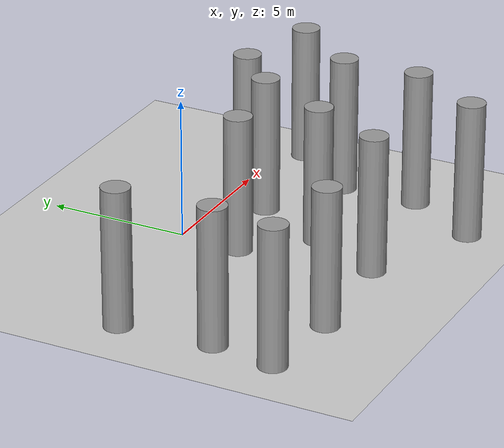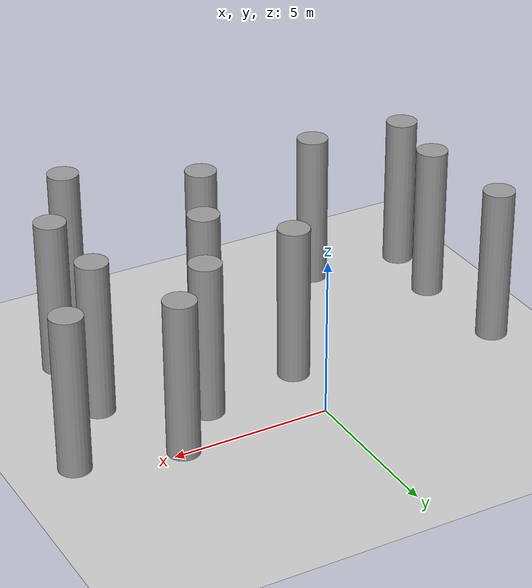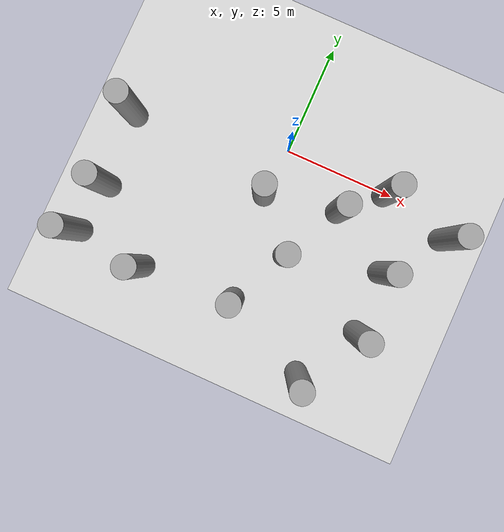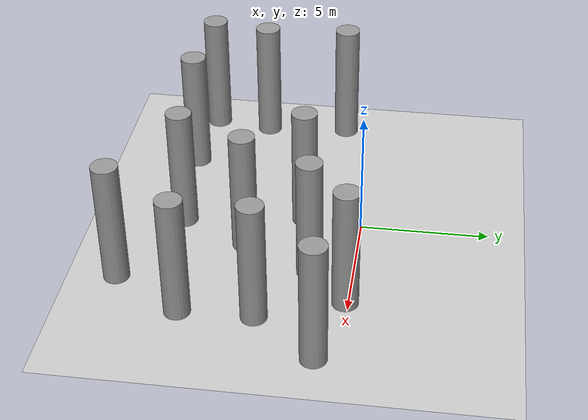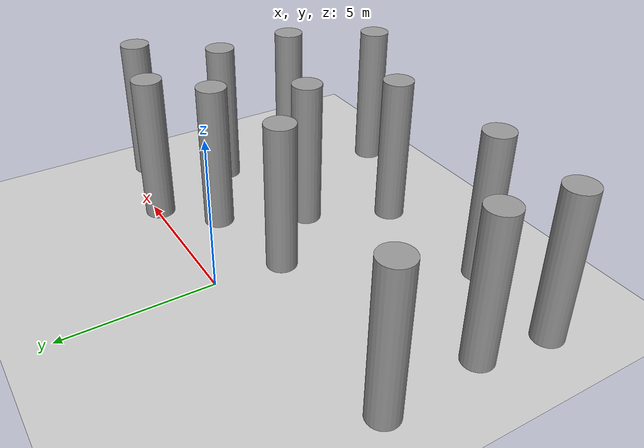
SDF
<sdf version="1.7">
 <world name="default">
  <model name="ground_plane">
   <static>1</static>
   <link name="link">
    <collision name="collision">
     <geometry><plane><normal>0 0 1</normal><size>100 100</size></plane></geometry>
     <surface><friction><ode><mu>100</mu><mu2>50</mu2></ode></friction></surface>
    </collision>
    <visual name="visual">
     <cast_shadows>0</cast_shadows>
     <geometry><plane><normal>0 0 1</normal><size>100 100</size></plane></geometry>
     <material>
      <script><uri>file://media/materials/scripts/gazebo.material</uri><name>Gazebo/Grey</name></script>
     </material>
    </visual>
   </link>
  </model>
  <model name="cylinder5_clone">
   <link name="link">
    <inertial>
     <mass>1</mass>
     <inertia><ixx>0.145833</ixx><ixy>0</ixy><ixz>0</ixz><iyy>0.145833</iyy><iyz>0</iyz><izz>0.125</izz></inertia>
    </inertial>
    <kinematic>1</kinematic>
    <visual name="visual">
     <geometry><cylinder><radius>0.5</radius><length>5</length></cylinder></geometry>
     <material>
      <script><name>Gazebo/Grey</name><uri>file://media/materials/scripts/gazebo.material</uri></script>
      <shader type="pixel"><normal_map>__default__</normal_map></shader>
      <ambient>0.3 0.3 0.3 1</ambient>
      <diffuse>0.7 0.7 0.7 1</diffuse>
      <specular>0.01 0.01 0.01 1</specular>
      <emissive>0 0 0 1</emissive>
     </material>
    </visual>
    <collision name="collision">
     <geometry><cylinder><radius>0.5</radius><length>5</length></cylinder></geometry>
     <surface>
      <friction>
       <ode><mu>1</mu><mu2>1</mu2><fdir1>0 0 0</fdir1><slip1>0</slip1><slip2>0</slip2></ode>
       <torsional>
        <coefficient>1</coefficient>
        <patch_radius>0</patch_radius>
        <surface_radius>0</surface_radius>
        <use_patch_radius>1</use_patch_radius>
        <ode><slip>0</slip></ode>
       </torsional>
      </friction>
      <bounce><restitution_coefficient>0</restitution_coefficient><threshold>1e+06</threshold></bounce>
      <contact>
       <collide_without_contact>0</collide_without_contact>
       <collide_without_contact_bitmask>1</collide_without_contact_bitmask>
       <collide_bitmask>1</collide_bitmask>
       <ode>
        <soft_cfm>0</soft_cfm>
        <soft_erp>0.2</soft_erp>
        <kp>1e+13</kp>
        <kd>1</kd>
        <max_vel>0.01</max_vel>
        <min_depth>0</min_depth>
       </ode>
       <bullet>
        <split_impulse>1</split_impulse>
        <split_impulse_penetration_threshold>-0.01</split_impulse_penetration_threshold>
        <soft_cfm>0</soft_cfm>
        <soft_erp>0.2</soft_erp>
        <kp>1e+13</kp>
        <kd>1</kd>
       </bullet>
      </contact>
     </surface>
    </collision>
   </link>
   <static>0</static>
   <pose>1.72804 -4.33355 2.52877 0.001005 0.001206 -0.001</pose>
  </model>
  <model name="cylinder5_clone_0">
   <link name="link">
    <inertial>
     <mass>1</mass>
     <inertia><ixx>0.145833</ixx><ixy>0</ixy><ixz>0</ixz><iyy>0.145833</iyy><iyz>0</iyz><izz>0.125</izz></inertia>
    </inertial>
    <kinematic>1</kinematic>
    <visual name="visual">
     <geometry><cylinder><radius>0.5</radius><length>5</length></cylinder></geometry>
     <material>
      <script><name>Gazebo/Grey</name><uri>file://media/materials/scripts/gazebo.material</uri></script>
      <shader type="pixel"><normal_map>__default__</normal_map></shader>
      <ambient>0.3 0.3 0.3 1</ambient>
      <diffuse>0.7 0.7 0.7 1</diffuse>
      <specular>0.01 0.01 0.01 1</specular>
      <emissive>0 0 0 1</emissive>
     </material>
    </visual>
    <collision name="collision">
     <geometry><cylinder><radius>0.5</radius><length>5</length></cylinder></geometry>
     <surface>
      <friction>
       <ode><mu>1</mu><mu2>1</mu2><fdir1>0 0 0</fdir1><slip1>0</slip1><slip2>0</slip2></ode>
       <torsional>
        <coefficient>1</coefficient>
        <patch_radius>0</patch_radius>
        <surface_radius>0</surface_radius>
        <use_patch_radius>1</use_patch_radius>
        <ode><slip>0</slip></ode>
       </torsional>
      </friction>
      <bounce><restitution_coefficient>0</restitution_coefficient><threshold>1e+06</threshold></bounce>
      <contact>
       <collide_without_contact>0</collide_without_contact>
       <collide_without_contact_bitmask>1</collide_without_contact_bitmask>
       <collide_bitmask>1</collide_bitmask>
       <ode>
        <soft_cfm>0</soft_cfm>
        <soft_erp>0.2</soft_erp>
        <kp>1e+13</kp>
        <kd>1</kd>
        <max_vel>0.01</max_vel>
        <min_depth>0</min_depth>
       </ode>
       <bullet>
        <split_impulse>1</split_impulse>
        <split_impulse_penetration_threshold>-0.01</split_impulse_penetration_threshold>
        <soft_cfm>0</soft_cfm>
        <soft_erp>0.2</soft_erp>
        <kp>1e+13</kp>
        <kd>1</kd>
       </bullet>
      </contact>
     </surface>
    </collision>
   </link>
   <static>0</static>
   <pose>4.65305 -0.11819 2.52877 0.001005 0.001206 -0.001</pose>
  </model>
  <model name="cylinder5_clone_2">
   <link name="link">
    <inertial>
     <mass>1</mass>
     <inertia><ixx>0.145833</ixx><ixy>0</ixy><ixz>0</ixz><iyy>0.145833</iyy><iyz>0</iyz><izz>0.125</izz></inertia>
    </inertial>
    <kinematic>1</kinematic>
    <visual name="visual">
     <geometry><cylinder><radius>0.5</radius><length>5</length></cylinder></geometry>
     <material>
      <script><name>Gazebo/Grey</name><uri>file://media/materials/scripts/gazebo.material</uri></script>
      <shader type="pixel"><normal_map>__default__</normal_map></shader>
      <ambient>0.3 0.3 0.3 1</ambient>
      <diffuse>0.7 0.7 0.7 1</diffuse>
      <specular>0.01 0.01 0.01 1</specular>
      <emissive>0 0 0 1</emissive>
     </material>
    </visual>
    <collision name="collision">
     <geometry><cylinder><radius>0.5</radius><length>5</length></cylinder></geometry>
     <surface>
      <friction>
       <ode><mu>1</mu><mu2>1</mu2><fdir1>0 0 0</fdir1><slip1>0</slip1><slip2>0</slip2></ode>
       <torsional>
        <coefficient>1</coefficient>
        <patch_radius>0</patch_radius>
        <surface_radius>0</surface_radius>
        <use_patch_radius>1</use_patch_radius>
        <ode><slip>0</slip></ode>
       </torsional>
      </friction>
      <bounce><restitution_coefficient>0</restitution_coefficient><threshold>1e+06</threshold></bounce>
      <contact>
       <collide_without_contact>0</collide_without_contact>
       <collide_without_contact_bitmask>1</collide_without_contact_bitmask>
       <collide_bitmask>1</collide_bitmask>
       <ode>
        <soft_cfm>0</soft_cfm>
        <soft_erp>0.2</soft_erp>
        <kp>1e+13</kp>
        <kd>1</kd>
        <max_vel>0.01</max_vel>
        <min_depth>0</min_depth>
       </ode>
       <bullet>
        <split_impulse>1</split_impulse>
        <split_impulse_penetration_threshold>-0.01</split_impulse_penetration_threshold>
        <soft_cfm>0</soft_cfm>
        <soft_erp>0.2</soft_erp>
        <kp>1e+13</kp>
        <kd>1</kd>
       </bullet>
      </contact>
     </surface>
    </collision>
   </link>
   <static>0</static>
   <pose>-6.89485 -6.99418 2.52877 0.001005 0.001206 -0.001</pose>
  </model>
  <model name="cylinder5_clone_3">
   <link name="link">
    <inertial>
     <mass>1</mass>
     <inertia><ixx>0.145833</ixx><ixy>0</ixy><ixz>0</ixz><iyy>0.145833</iyy><iyz>0</iyz><izz>0.125</izz></inertia>
    </inertial>
    <kinematic>1</kinematic>
    <visual name="visual">
     <geometry><cylinder><radius>0.5</radius><length>5</length></cylinder></geometry>
     <material>
      <script><name>Gazebo/Grey</name><uri>file://media/materials/scripts/gazebo.material</uri></script>
      <shader type="pixel"><normal_map>__default__</normal_map></shader>
      <ambient>0.3 0.3 0.3 1</ambient>
      <diffuse>0.7 0.7 0.7 1</diffuse>
      <specular>0.01 0.01 0.01 1</specular>
      <emissive>0 0 0 1</emissive>
     </material>
    </visual>
    <collision name="collision">
     <geometry><cylinder><radius>0.5</radius><length>5</length></cylinder></geometry>
     <surface>
      <friction>
       <ode><mu>1</mu><mu2>1</mu2><fdir1>0 0 0</fdir1><slip1>0</slip1><slip2>0</slip2></ode>
       <torsional>
        <coefficient>1</coefficient>
        <patch_radius>0</patch_radius>
        <surface_radius>0</surface_radius>
        <use_patch_radius>1</use_patch_radius>
        <ode><slip>0</slip></ode>
       </torsional>
      </friction>
      <bounce><restitution_coefficient>0</restitution_coefficient><threshold>1e+06</threshold></bounce>
      <contact>
       <collide_without_contact>0</collide_without_contact>
       <collide_without_contact_bitmask>1</collide_without_contact_bitmask>
       <collide_bitmask>1</collide_bitmask>
       <ode>
        <soft_cfm>0</soft_cfm>
        <soft_erp>0.2</soft_erp>
        <kp>1e+13</kp>
        <kd>1</kd>
        <max_vel>0.01</max_vel>
        <min_depth>0</min_depth>
       </ode>
       <bullet>
        <split_impulse>1</split_impulse>
        <split_impulse_penetration_threshold>-0.01</split_impulse_penetration_threshold>
        <soft_cfm>0</soft_cfm>
        <soft_erp>0.2</soft_erp>
        <kp>1e+13</kp>
        <kd>1</kd>
       </bullet>
      </contact>
     </surface>
    </collision>
   </link>
   <static>0</static>
   <pose>-6.5732 -4.68868 2.52877 0.001005 0.001206 -0.001</pose>
  </model>
  <model name="cylinder5_clone_4">
   <link name="link">
    <inertial>
     <mass>1</mass>
     <inertia><ixx>0.145833</ixx><ixy>0</ixy><ixz>0</ixz><iyy>0.145833</iyy><iyz>0</iyz><izz>0.125</izz></inertia>
    </inertial>
    <kinematic>1</kinematic>
    <visual name="visual">
     <geometry><cylinder><radius>0.5</radius><length>5</length></cylinder></geometry>
     <material>
      <script><name>Gazebo/Grey</name><uri>file://media/materials/scripts/gazebo.material</uri></script>
      <shader type="pixel"><normal_map>__default__</normal_map></shader>
      <ambient>0.3 0.3 0.3 1</ambient>
      <diffuse>0.7 0.7 0.7 1</diffuse>
      <specular>0.01 0.01 0.01 1</specular>
      <emissive>0 0 0 1</emissive>
     </material>
    </visual>
    <collision name="collision">
     <geometry><cylinder><radius>0.5</radius><length>5</length></cylinder></geometry>
     <surface>
      <friction>
       <ode><mu>1</mu><mu2>1</mu2><fdir1>0 0 0</fdir1><slip1>0</slip1><slip2>0</slip2></ode>
       <torsional>
        <coefficient>1</coefficient>
        <patch_radius>0</patch_radius>
        <surface_radius>0</surface_radius>
        <use_patch_radius>1</use_patch_radius>
        <ode><slip>0</slip></ode>
       </torsional>
      </friction>
      <bounce><restitution_coefficient>0</restitution_coefficient><threshold>1e+06</threshold></bounce>
      <contact>
       <collide_without_contact>0</collide_without_contact>
       <collide_without_contact_bitmask>1</collide_without_contact_bitmask>
       <collide_bitmask>1</collide_bitmask>
       <ode>
        <soft_cfm>0</soft_cfm>
        <soft_erp>0.2</soft_erp>
        <kp>1e+13</kp>
        <kd>1</kd>
        <max_vel>0.01</max_vel>
        <min_depth>0</min_depth>
       </ode>
       <bullet>
        <split_impulse>1</split_impulse>
        <split_impulse_penetration_threshold>-0.01</split_impulse_penetration_threshold>
        <soft_cfm>0</soft_cfm>
        <soft_erp>0.2</soft_erp>
        <kp>1e+13</kp>
        <kd>1</kd>
       </bullet>
      </contact>
     </surface>
    </collision>
   </link>
   <static>0</static>
   <pose>-6.81733 -1.34177 2.52877 0.001005 0.001206 -0.001</pose>
  </model>
  <model name="cylinder5_clone_5">
   <link name="link">
    <inertial>
     <mass>1</mass>
     <inertia><ixx>0.145833</ixx><ixy>0</ixy><ixz>0</ixz><iyy>0.145833</iyy><iyz>0</iyz><izz>0.125</izz></inertia>
    </inertial>
    <kinematic>1</kinematic>
    <visual name="visual">
     <geometry><cylinder><radius>0.5</radius><length>5</length></cylinder></geometry>
     <material>
      <script><name>Gazebo/Grey</name><uri>file://media/materials/scripts/gazebo.material</uri></script>
      <shader type="pixel"><normal_map>__default__</normal_map></shader>
      <ambient>0.3 0.3 0.3 1</ambient>
      <diffuse>0.7 0.7 0.7 1</diffuse>
      <specular>0.01 0.01 0.01 1</specular>
      <emissive>0 0 0 1</emissive>
     </material>
    </visual>
    <collision name="collision">
     <geometry><cylinder><radius>0.5</radius><length>5</length></cylinder></geometry>
     <surface>
      <friction>
       <ode><mu>1</mu><mu2>1</mu2><fdir1>0 0 0</fdir1><slip1>0</slip1><slip2>0</slip2></ode>
       <torsional>
        <coefficient>1</coefficient>
        <patch_radius>0</patch_radius>
        <surface_radius>0</surface_radius>
        <use_patch_radius>1</use_patch_radius>
        <ode><slip>0</slip></ode>
       </torsional>
      </friction>
      <bounce><restitution_coefficient>0</restitution_coefficient><threshold>1e+06</threshold></bounce>
      <contact>
       <collide_without_contact>0</collide_without_contact>
       <collide_without_contact_bitmask>1</collide_without_contact_bitmask>
       <collide_bitmask>1</collide_bitmask>
       <ode>
        <soft_cfm>0</soft_cfm>
        <soft_erp>0.2</soft_erp>
        <kp>1e+13</kp>
        <kd>1</kd>
        <max_vel>0.01</max_vel>
        <min_depth>0</min_depth>
       </ode>
       <bullet>
        <split_impulse>1</split_impulse>
        <split_impulse_penetration_threshold>-0.01</split_impulse_penetration_threshold>
        <soft_cfm>0</soft_cfm>
        <soft_erp>0.2</soft_erp>
        <kp>1e+13</kp>
        <kd>1</kd>
       </bullet>
      </contact>
     </surface>
    </collision>
   </link>
   <static>0</static>
   <pose>-3.72402 -7.2916 2.52877 0.001005 0.001206 -0.001</pose>
  </model>
  <model name="cylinder5_clone_6">
   <link name="link">
    <inertial>
     <mass>1</mass>
     <inertia><ixx>0.145833</ixx><ixy>0</ixy><ixz>0</ixz><iyy>0.145833</iyy><iyz>0</iyz><izz>0.125</izz></inertia>
    </inertial>
    <kinematic>1</kinematic>
    <visual name="visual">
     <geometry><cylinder><radius>0.5</radius><length>5</length></cylinder></geometry>
     <material>
      <script><name>Gazebo/Grey</name><uri>file://media/materials/scripts/gazebo.material</uri></script>
      <shader type="pixel"><normal_map>__default__</normal_map></shader>
      <ambient>0.3 0.3 0.3 1</ambient>
      <diffuse>0.7 0.7 0.7 1</diffuse>
      <specular>0.01 0.01 0.01 1</specular>
      <emissive>0 0 0 1</emissive>
     </material>
    </visual>
    <collision name="collision">
     <geometry><cylinder><radius>0.5</radius><length>5</length></cylinder></geometry>
     <surface>
      <friction>
       <ode><mu>1</mu><mu2>1</mu2><fdir1>0 0 0</fdir1><slip1>0</slip1><slip2>0</slip2></ode>
       <torsional>
        <coefficient>1</coefficient>
        <patch_radius>0</patch_radius>
        <surface_radius>0</surface_radius>
        <use_patch_radius>1</use_patch_radius>
        <ode><slip>0</slip></ode>
       </torsional>
      </friction>
      <bounce><restitution_coefficient>0</restitution_coefficient><threshold>1e+06</threshold></bounce>
      <contact>
       <collide_without_contact>0</collide_without_contact>
       <collide_without_contact_bitmask>1</collide_without_contact_bitmask>
       <collide_bitmask>1</collide_bitmask>
       <ode>
        <soft_cfm>0</soft_cfm>
        <soft_erp>0.2</soft_erp>
        <kp>1e+13</kp>
        <kd>1</kd>
        <max_vel>0.01</max_vel>
        <min_depth>0</min_depth>
       </ode>
       <bullet>
        <split_impulse>1</split_impulse>
        <split_impulse_penetration_threshold>-0.01</split_impulse_penetration_threshold>
        <soft_cfm>0</soft_cfm>
        <soft_erp>0.2</soft_erp>
        <kp>1e+13</kp>
        <kd>1</kd>
       </bullet>
      </contact>
     </surface>
    </collision>
   </link>
   <static>0</static>
   <pose>0.460928 -6.96876 2.52877 0.001005 0.001206 -0.001</pose>
  </model>
  <model name="cylinder5_clone_7">
   <link name="link">
    <inertial>
     <mass>1</mass>
     <inertia><ixx>0.145833</ixx><ixy>0</ixy><ixz>0</ixz><iyy>0.145833</iyy><iyz>0</iyz><izz>0.125</izz></inertia>
    </inertial>
    <kinematic>1</kinematic>
    <visual name="visual">
     <geometry><cylinder><radius>0.5</radius><length>5</length></cylinder></geometry>
     <material>
      <script><name>Gazebo/Grey</name><uri>file://media/materials/scripts/gazebo.material</uri></script>
      <shader type="pixel"><normal_map>__default__</normal_map></shader>
      <ambient>0.3 0.3 0.3 1</ambient>
      <diffuse>0.7 0.7 0.7 1</diffuse>
      <specular>0.01 0.01 0.01 1</specular>
      <emissive>0 0 0 1</emissive>
     </material>
    </visual>
    <collision name="collision">
     <geometry><cylinder><radius>0.5</radius><length>5</length></cylinder></geometry>
     <surface>
      <friction>
       <ode><mu>1</mu><mu2>1</mu2><fdir1>0 0 0</fdir1><slip1>0</slip1><slip2>0</slip2></ode>
       <torsional>
        <coefficient>1</coefficient>
        <patch_radius>0</patch_radius>
        <surface_radius>0</surface_radius>
        <use_patch_radius>1</use_patch_radius>
        <ode><slip>0</slip></ode>
       </torsional>
      </friction>
      <bounce><restitution_coefficient>0</restitution_coefficient><threshold>1e+06</threshold></bounce>
      <contact>
       <collide_without_contact>0</collide_without_contact>
       <collide_without_contact_bitmask>1</collide_without_contact_bitmask>
       <collide_bitmask>1</collide_bitmask>
       <ode>
        <soft_cfm>0</soft_cfm>
        <soft_erp>0.2</soft_erp>
        <kp>1e+13</kp>
        <kd>1</kd>
        <max_vel>0.01</max_vel>
        <min_depth>0</min_depth>
       </ode>
       <bullet>
        <split_impulse>1</split_impulse>
        <split_impulse_penetration_threshold>-0.01</split_impulse_penetration_threshold>
        <soft_cfm>0</soft_cfm>
        <soft_erp>0.2</soft_erp>
        <kp>1e+13</kp>
        <kd>1</kd>
       </bullet>
      </contact>
     </surface>
    </collision>
   </link>
   <static>0</static>
   <pose>5.84921 -3.29722 2.52877 0.001005 0.001206 -0.001</pose>
  </model>
  <model name="cylinder5_clone_8">
   <link name="link">
    <inertial>
     <mass>1</mass>
     <inertia><ixx>0.145833</ixx><ixy>0</ixy><ixz>0</ixz><iyy>0.145833</iyy><iyz>0</iyz><izz>0.125</izz></inertia>
    </inertial>
    <kinematic>1</kinematic>
    <visual name="visual">
     <geometry><cylinder><radius>0.5</radius><length>5</length></cylinder></geometry>
     <material>
      <script><name>Gazebo/Grey</name><uri>file://media/materials/scripts/gazebo.material</uri></script>
      <shader type="pixel"><normal_map>__default__</normal_map></shader>
      <ambient>0.3 0.3 0.3 1</ambient>
      <diffuse>0.7 0.7 0.7 1</diffuse>
      <specular>0.01 0.01 0.01 1</specular>
      <emissive>0 0 0 1</emissive>
     </material>
    </visual>
    <collision name="collision">
     <geometry><cylinder><radius>0.5</radius><length>5</length></cylinder></geometry>
     <surface>
      <friction>
       <ode><mu>1</mu><mu2>1</mu2><fdir1>0 0 0</fdir1><slip1>0</slip1><slip2>0</slip2></ode>
       <torsional>
        <coefficient>1</coefficient>
        <patch_radius>0</patch_radius>
        <surface_radius>0</surface_radius>
        <use_patch_radius>1</use_patch_radius>
        <ode><slip>0</slip></ode>
       </torsional>
      </friction>
      <bounce><restitution_coefficient>0</restitution_coefficient><threshold>1e+06</threshold></bounce>
      <contact>
       <collide_without_contact>0</collide_without_contact>
       <collide_without_contact_bitmask>1</collide_without_contact_bitmask>
       <collide_bitmask>1</collide_bitmask>
       <ode>
        <soft_cfm>0</soft_cfm>
        <soft_erp>0.2</soft_erp>
        <kp>1e+13</kp>
        <kd>1</kd>
        <max_vel>0.01</max_vel>
        <min_depth>0</min_depth>
       </ode>
       <bullet>
        <split_impulse>1</split_impulse>
        <split_impulse_penetration_threshold>-0.01</split_impulse_penetration_threshold>
        <soft_cfm>0</soft_cfm>
        <soft_erp>0.2</soft_erp>
        <kp>1e+13</kp>
        <kd>1</kd>
       </bullet>
      </contact>
     </surface>
    </collision>
   </link>
   <static>0</static>
   <pose>5.90759 -6.10396 2.52877 0.001005 0.001206 -0.001</pose>
  </model>
  <model name="cylinder5_clone_18">
   <link name="link">
    <inertial>
     <mass>1</mass>
     <inertia><ixx>0.145833</ixx><ixy>0</ixy><ixz>0</ixz><iyy>0.145833</iyy><iyz>0</iyz><izz>0.125</izz></inertia>
    </inertial>
    <kinematic>1</kinematic>
    <visual name="visual">
     <geometry><cylinder><radius>0.5</radius><length>5</length></cylinder></geometry>
     <material>
      <script><name>Gazebo/Grey</name><uri>file://media/materials/scripts/gazebo.material</uri></script>
      <shader type="pixel"><normal_map>__default__</normal_map></shader>
      <ambient>0.3 0.3 0.3 1</ambient>
      <diffuse>0.7 0.7 0.7 1</diffuse>
      <specular>0.01 0.01 0.01 1</specular>
      <emissive>0 0 0 1</emissive>
     </material>
    </visual>
    <collision name="collision">
     <geometry><cylinder><radius>0.5</radius><length>5</length></cylinder></geometry>
     <surface>
      <friction>
       <ode><mu>1</mu><mu2>1</mu2><fdir1>0 0 0</fdir1><slip1>0</slip1><slip2>0</slip2></ode>
       <torsional>
        <coefficient>1</coefficient>
        <patch_radius>0</patch_radius>
        <surface_radius>0</surface_radius>
        <use_patch_radius>1</use_patch_radius>
        <ode><slip>0</slip></ode>
       </torsional>
      </friction>
      <bounce><restitution_coefficient>0</restitution_coefficient><threshold>1e+06</threshold></bounce>
      <contact>
       <collide_without_contact>0</collide_without_contact>
       <collide_without_contact_bitmask>1</collide_without_contact_bitmask>
       <collide_bitmask>1</collide_bitmask>
       <ode>
        <soft_cfm>0</soft_cfm>
        <soft_erp>0.2</soft_erp>
        <kp>1e+13</kp>
        <kd>1</kd>
        <max_vel>0.01</max_vel>
        <min_depth>0</min_depth>
       </ode>
       <bullet>
        <split_impulse>1</split_impulse>
        <split_impulse_penetration_threshold>-0.01</split_impulse_penetration_threshold>
        <soft_cfm>0</soft_cfm>
        <soft_erp>0.2</soft_erp>
        <kp>1e+13</kp>
        <kd>1</kd>
       </bullet>
      </contact>
     </surface>
    </collision>
   </link>
   <static>0</static>
   <pose>3.07107 -1.64109 2.52877 0.001005 0.001206 -0.001</pose>
  </model>
  <model name="cylinder5_clone_19">
   <link name="link">
    <inertial>
     <mass>1</mass>
     <inertia><ixx>0.145833</ixx><ixy>0</ixy><ixz>0</ixz><iyy>0.145833</iyy><iyz>0</iyz><izz>0.125</izz></inertia>
    </inertial>
    <kinematic>1</kinematic>
    <visual name="visual">
     <geometry><cylinder><radius>0.5</radius><length>5</length></cylinder></geometry>
     <material>
      <script><name>Gazebo/Grey</name><uri>file://media/materials/scripts/gazebo.material</uri></script>
      <shader type="pixel"><normal_map>__default__</normal_map></shader>
      <ambient>0.3 0.3 0.3 1</ambient>
      <diffuse>0.7 0.7 0.7 1</diffuse>
      <specular>0.01 0.01 0.01 1</specular>
      <emissive>0 0 0 1</emissive>
     </material>
    </visual>
    <collision name="collision">
     <geometry><cylinder><radius>0.5</radius><length>5</length></cylinder></geometry>
     <surface>
      <friction>
       <ode><mu>1</mu><mu2>1</mu2><fdir1>0 0 0</fdir1><slip1>0</slip1><slip2>0</slip2></ode>
       <torsional>
        <coefficient>1</coefficient>
        <patch_radius>0</patch_radius>
        <surface_radius>0</surface_radius>
        <use_patch_radius>1</use_patch_radius>
        <ode><slip>0</slip></ode>
       </torsional>
      </friction>
      <bounce><restitution_coefficient>0</restitution_coefficient><threshold>1e+06</threshold></bounce>
      <contact>
       <collide_without_contact>0</collide_without_contact>
       <collide_without_contact_bitmask>1</collide_without_contact_bitmask>
       <collide_bitmask>1</collide_bitmask>
       <ode>
        <soft_cfm>0</soft_cfm>
        <soft_erp>0.2</soft_erp>
        <kp>1e+13</kp>
        <kd>1</kd>
        <max_vel>0.01</max_vel>
        <min_depth>0</min_depth>
       </ode>
       <bullet>
        <split_impulse>1</split_impulse>
        <split_impulse_penetration_threshold>-0.01</split_impulse_penetration_threshold>
        <soft_cfm>0</soft_cfm>
        <soft_erp>0.2</soft_erp>
        <kp>1e+13</kp>
        <kd>1</kd>
       </bullet>
      </contact>
     </surface>
    </collision>
   </link>
   <static>0</static>
   <pose>-0.176661 -2.26136 2.52877 0.001005 0.001206 -0.001</pose>
  </model>
  <model name="cylinder5_clone_22">
   <link name="link">
    <inertial>
     <mass>1</mass>
     <inertia><ixx>0.145833</ixx><ixy>0</ixy><ixz>0</ixz><iyy>0.145833</iyy><iyz>0</iyz><izz>0.125</izz></inertia>
    </inertial>
    <kinematic>1</kinematic>
    <visual name="visual">
     <geometry><cylinder><radius>0.5</radius><length>5</length></cylinder></geometry>
     <material>
      <script><name>Gazebo/Grey</name><uri>file://media/materials/scripts/gazebo.material</uri></script>
      <shader type="pixel"><normal_map>__default__</normal_map></shader>
      <ambient>0.3 0.3 0.3 1</ambient>
      <diffuse>0.7 0.7 0.7 1</diffuse>
      <specular>0.01 0.01 0.01 1</specular>
      <emissive>0 0 0 1</emissive>
     </material>
    </visual>
    <collision name="collision">
     <geometry><cylinder><radius>0.5</radius><length>5</length></cylinder></geometry>
     <surface>
      <friction>
       <ode><mu>1</mu><mu2>1</mu2><fdir1>0 0 0</fdir1><slip1>0</slip1><slip2>0</slip2></ode>
       <torsional>
        <coefficient>1</coefficient>
        <patch_radius>0</patch_radius>
        <surface_radius>0</surface_radius>
        <use_patch_radius>1</use_patch_radius>
        <ode><slip>0</slip></ode>
       </torsional>
      </friction>
      <bounce><restitution_coefficient>0</restitution_coefficient><threshold>1e+06</threshold></bounce>
      <contact>
       <collide_without_contact>0</collide_without_contact>
       <collide_without_contact_bitmask>1</collide_without_contact_bitmask>
       <collide_bitmask>1</collide_bitmask>
       <ode>
        <soft_cfm>0</soft_cfm>
        <soft_erp>0.2</soft_erp>
        <kp>1e+13</kp>
        <kd>1</kd>
        <max_vel>0.01</max_vel>
        <min_depth>0</min_depth>
       </ode>
       <bullet>
        <split_impulse>1</split_impulse>
        <split_impulse_penetration_threshold>-0.01</split_impulse_penetration_threshold>
        <soft_cfm>0</soft_cfm>
        <soft_erp>0.2</soft_erp>
        <kp>1e+13</kp>
        <kd>1</kd>
       </bullet>
      </contact>
     </surface>
    </collision>
   </link>
   <static>0</static>
   <pose>7.72068 -0.88452 2.52877 0.001005 0.001206 -0.001</pose>
  </model>
  <model name="cylinder5_clone_23">
   <link name="link">
    <inertial>
     <mass>1</mass>
     <inertia><ixx>0.145833</ixx><ixy>0</ixy><ixz>0</ixz><iyy>0.145833</iyy><iyz>0</iyz><izz>0.125</izz></inertia>
    </inertial>
    <kinematic>1</kinematic>
    <visual name="visual">
     <geometry><cylinder><radius>0.5</radius><length>5</length></cylinder></geometry>
     <material>
      <script><name>Gazebo/Grey</name><uri>file://media/materials/scripts/gazebo.material</uri></script>
      <shader type="pixel"><normal_map>__default__</normal_map></shader>
      <ambient>0.3 0.3 0.3 1</ambient>
      <diffuse>0.7 0.7 0.7 1</diffuse>
      <specular>0.01 0.01 0.01 1</specular>
      <emissive>0 0 0 1</emissive>
     </material>
    </visual>
    <collision name="collision">
     <geometry><cylinder><radius>0.5</radius><length>5</length></cylinder></geometry>
     <surface>
      <friction>
       <ode><mu>1</mu><mu2>1</mu2><fdir1>0 0 0</fdir1><slip1>0</slip1><slip2>0</slip2></ode>
       <torsional>
        <coefficient>1</coefficient>
        <patch_radius>0</patch_radius>
        <surface_radius>0</surface_radius>
        <use_patch_radius>1</use_patch_radius>
        <ode><slip>0</slip></ode>
       </torsional>
      </friction>
      <bounce><restitution_coefficient>0</restitution_coefficient><threshold>1e+06</threshold></bounce>
      <contact>
       <collide_without_contact>0</collide_without_contact>
       <collide_without_contact_bitmask>1</collide_without_contact_bitmask>
       <collide_bitmask>1</collide_bitmask>
       <ode>
        <soft_cfm>0</soft_cfm>
        <soft_erp>0.2</soft_erp>
        <kp>1e+13</kp>
        <kd>1</kd>
        <max_vel>0.01</max_vel>
        <min_depth>0</min_depth>
       </ode>
       <bullet>
        <split_impulse>1</split_impulse>
        <split_impulse_penetration_threshold>-0.01</split_impulse_penetration_threshold>
        <soft_cfm>0</soft_cfm>
        <soft_erp>0.2</soft_erp>
        <kp>1e+13</kp>
        <kd>1</kd>
       </bullet>
      </contact>
     </surface>
    </collision>
   </link>
   <static>0</static>
   <pose>4.28745 -8.78273 2.56901 0.002408 0.002895 -0.002638</pose>
  </model>
 </world>
</sdf>
